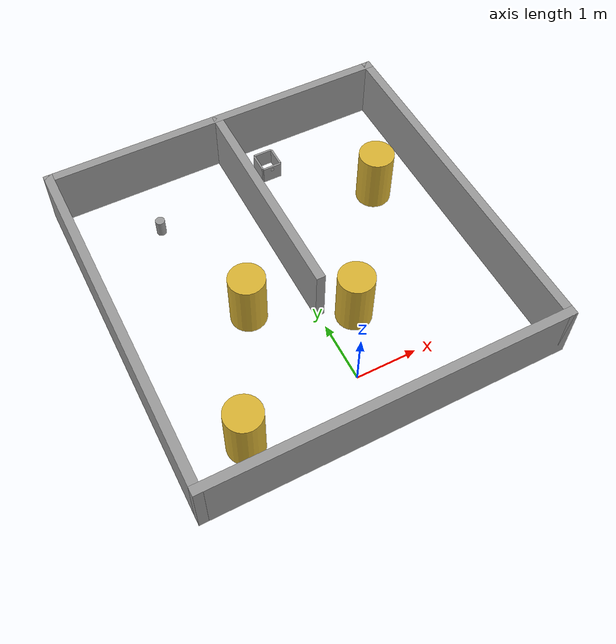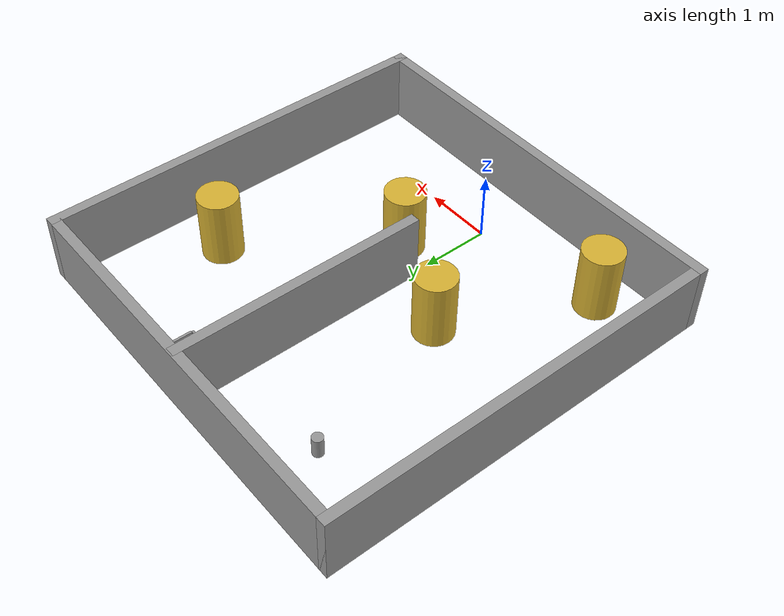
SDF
<?xml version='1.0'?>
<sdf version='1.6'>
  <model name='turtlebot3_rooms_mnp'>
    <link name='link_0'>
      <pose frame=''>0.683315 4.23233 0 0 -0 0</pose>
      <inertial>
        <mass>0.00350583</mass>
        <inertia>
          <ixx>2.82745e-05</ixx>
          <ixy>0</ixy>
          <ixz>0</ixz>
          <iyy>5.98732e-05</iyy>
          <iyz>0</iyz>
          <izz>3.22857e-05</izz>
        </inertia>
        <pose frame=''>0 0 0 0 -0 0</pose>
      </inertial>
      <visual name='visual'>
        <pose frame=''>0 0 0 0 -0 0</pose>
        <geometry>
          <box>
            <size>0.330665 0.034321 0.309211</size>
          </box>
        </geometry>
        <material>
          <lighting>1</lighting>
          <script>
            <uri>file://media/materials/scripts/gazebo.material</uri>
            <name>Gazebo/Grey</name>
          </script>
          <ambient>0.3 0.3 0.3 1</ambient>
          <diffuse>0.7 0.7 0.7 1</diffuse>
          <specular>0.01 0.01 0.01 1</specular>
          <emissive>0 0 0 1</emissive>
        </material>
        <cast_shadows>1</cast_shadows>
        <transparency>0</transparency>
      </visual>
      <collision name='collision'>
        <laser_retro>0</laser_retro>
        <max_contacts>10</max_contacts>
        <pose frame=''>0 0 0 0 -0 0</pose>
        <geometry>
          <box>
            <size>0.330665 0.034321 0.309211</size>
          </box>
        </geometry>
        <surface>
          <friction>
            <ode>
              <mu>1</mu>
              <mu2>1</mu2>
              <fdir1>0 0 0</fdir1>
              <slip1>0</slip1>
              <slip2>0</slip2>
            </ode>
            <torsional>
              <coefficient>1</coefficient>
              <patch_radius>0</patch_radius>
              <surface_radius>0</surface_radius>
              <use_patch_radius>1</use_patch_radius>
              <ode>
                <slip>0</slip>
              </ode>
            </torsional>
          </friction>
          <bounce>
            <restitution_coefficient>0</restitution_coefficient>
            <threshold>1e+06</threshold>
          </bounce>
          <contact>
            <collide_without_contact>0</collide_without_contact>
            <collide_without_contact_bitmask>1</collide_without_contact_bitmask>
            <collide_bitmask>1</collide_bitmask>
            <ode>
              <soft_cfm>0</soft_cfm>
              <soft_erp>0.2</soft_erp>
              <kp>1e+13</kp>
              <kd>1</kd>
              <max_vel>0.01</max_vel>
              <min_depth>0</min_depth>
            </ode>
            <bullet>
              <split_impulse>1</split_impulse>
              <split_impulse_penetration_threshold>-0.01</split_impulse_penetration_threshold>
              <soft_cfm>0</soft_cfm>
              <soft_erp>0.2</soft_erp>
              <kp>1e+13</kp>
              <kd>1</kd>
            </bullet>
          </contact>
        </surface>
      </collision>
    </link>
    <link name='link_0_clone'>
      <pose frame=''>0.682862 4.5976 0 0 -0 0</pose>
      <inertial>
        <mass>0.00350583</mass>
        <inertia>
          <ixx>2.82745e-05</ixx>
          <ixy>0</ixy>
          <ixz>0</ixz>
          <iyy>5.98732e-05</iyy>
          <iyz>0</iyz>
          <izz>3.22857e-05</izz>
        </inertia>
        <pose frame=''>0 0 0 0 -0 0</pose>
      </inertial>
      <visual name='visual'>
        <pose frame=''>0 0 0 0 -0 0</pose>
        <geometry>
          <box>
            <size>0.330665 0.034321 0.309211</size>
          </box>
        </geometry>
        <material>
          <lighting>1</lighting>
          <script>
            <uri>file://media/materials/scripts/gazebo.material</uri>
            <name>Gazebo/Grey</name>
          </script>
          <ambient>0.3 0.3 0.3 1</ambient>
          <diffuse>0.7 0.7 0.7 1</diffuse>
          <specular>0.01 0.01 0.01 1</specular>
          <emissive>0 0 0 1</emissive>
          <shader type='pixel'/>
        </material>
        <cast_shadows>1</cast_shadows>
        <transparency>0</transparency>
      </visual>
      <collision name='collision'>
        <laser_retro>0</laser_retro>
        <max_contacts>10</max_contacts>
        <pose frame=''>0 0 0 0 -0 0</pose>
        <geometry>
          <box>
            <size>0.330665 0.034321 0.309211</size>
          </box>
        </geometry>
        <surface>
          <friction>
            <ode>
              <mu>1</mu>
              <mu2>1</mu2>
              <fdir1>0 0 0</fdir1>
              <slip1>0</slip1>
              <slip2>0</slip2>
            </ode>
            <torsional>
              <coefficient>1</coefficient>
              <patch_radius>0</patch_radius>
              <surface_radius>0</surface_radius>
              <use_patch_radius>1</use_patch_radius>
              <ode>
                <slip>0</slip>
              </ode>
            </torsional>
          </friction>
          <bounce>
            <restitution_coefficient>0</restitution_coefficient>
            <threshold>1e+06</threshold>
          </bounce>
          <contact>
            <collide_without_contact>0</collide_without_contact>
            <collide_without_contact_bitmask>1</collide_without_contact_bitmask>
            <collide_bitmask>1</collide_bitmask>
            <ode>
              <soft_cfm>0</soft_cfm>
              <soft_erp>0.2</soft_erp>
              <kp>1e+13</kp>
              <kd>1</kd>
              <max_vel>0.01</max_vel>
              <min_depth>0</min_depth>
            </ode>
            <bullet>
              <split_impulse>1</split_impulse>
              <split_impulse_penetration_threshold>-0.01</split_impulse_penetration_threshold>
              <soft_cfm>0</soft_cfm>
              <soft_erp>0.2</soft_erp>
              <kp>1e+13</kp>
              <kd>1</kd>
            </bullet>
          </contact>
        </surface>
      </collision>
    </link>
    <link name='link_0_clone_0'>
      <pose frame=''>0.84811 4.41524 0 0 -0 1.5708</pose>
      <inertial>
        <mass>0.00350583</mass>
        <inertia>
          <ixx>2.82745e-05</ixx>
          <ixy>0</ixy>
          <ixz>0</ixz>
          <iyy>5.98732e-05</iyy>
          <iyz>0</iyz>
          <izz>3.22857e-05</izz>
        </inertia>
        <pose frame=''>0 0 0 0 -0 0</pose>
      </inertial>
      <visual name='visual'>
        <pose frame=''>0 0 0 0 -0 0</pose>
        <geometry>
          <box>
            <size>0.330665 0.034321 0.309211</size>
          </box>
        </geometry>
        <material>
          <lighting>1</lighting>
          <script>
            <uri>file://media/materials/scripts/gazebo.material</uri>
            <name>Gazebo/Grey</name>
          </script>
          <ambient>0.3 0.3 0.3 1</ambient>
          <diffuse>0.7 0.7 0.7 1</diffuse>
          <specular>0.01 0.01 0.01 1</specular>
          <emissive>0 0 0 1</emissive>
          <shader type='pixel'/>
        </material>
        <cast_shadows>1</cast_shadows>
        <transparency>0</transparency>
      </visual>
      <collision name='collision'>
        <laser_retro>0</laser_retro>
        <max_contacts>10</max_contacts>
        <pose frame=''>0 0 0 0 -0 0</pose>
        <geometry>
          <box>
            <size>0.330665 0.034321 0.309211</size>
          </box>
        </geometry>
        <surface>
          <friction>
            <ode>
              <mu>1</mu>
              <mu2>1</mu2>
              <fdir1>0 0 0</fdir1>
              <slip1>0</slip1>
              <slip2>0</slip2>
            </ode>
            <torsional>
              <coefficient>1</coefficient>
              <patch_radius>0</patch_radius>
              <surface_radius>0</surface_radius>
              <use_patch_radius>1</use_patch_radius>
              <ode>
                <slip>0</slip>
              </ode>
            </torsional>
          </friction>
          <bounce>
            <restitution_coefficient>0</restitution_coefficient>
            <threshold>1e+06</threshold>
          </bounce>
          <contact>
            <collide_without_contact>0</collide_without_contact>
            <collide_without_contact_bitmask>1</collide_without_contact_bitmask>
            <collide_bitmask>1</collide_bitmask>
            <ode>
              <soft_cfm>0</soft_cfm>
              <soft_erp>0.2</soft_erp>
              <kp>1e+13</kp>
              <kd>1</kd>
              <max_vel>0.01</max_vel>
              <min_depth>0</min_depth>
            </ode>
            <bullet>
              <split_impulse>1</split_impulse>
              <split_impulse_penetration_threshold>-0.01</split_impulse_penetration_threshold>
              <soft_cfm>0</soft_cfm>
              <soft_erp>0.2</soft_erp>
              <kp>1e+13</kp>
              <kd>1</kd>
            </bullet>
          </contact>
        </surface>
      </collision>
    </link>
    <link name='link_0_clone_1'>
      <pose frame=''>0.513944 4.41515 0 0 0 -1.5708</pose>
      <inertial>
        <mass>0.00350583</mass>
        <inertia>
          <ixx>2.82745e-05</ixx>
          <ixy>0</ixy>
          <ixz>0</ixz>
          <iyy>5.98732e-05</iyy>
          <iyz>0</iyz>
          <izz>3.22857e-05</izz>
        </inertia>
        <pose frame=''>0 0 0 0 -0 0</pose>
      </inertial>
      <visual name='visual'>
        <pose frame=''>0 0 0 0 -0 0</pose>
        <geometry>
          <box>
            <size>0.330665 0.034321 0.309211</size>
          </box>
        </geometry>
        <material>
          <lighting>1</lighting>
          <script>
            <uri>file://media/materials/scripts/gazebo.material</uri>
            <name>Gazebo/Grey</name>
          </script>
          <ambient>0.3 0.3 0.3 1</ambient>
          <diffuse>0.7 0.7 0.7 1</diffuse>
          <specular>0.01 0.01 0.01 1</specular>
          <emissive>0 0 0 1</emissive>
          <shader type='pixel'/>
        </material>
        <cast_shadows>1</cast_shadows>
        <transparency>0</transparency>
      </visual>
      <collision name='collision'>
        <laser_retro>0</laser_retro>
        <max_contacts>10</max_contacts>
        <pose frame=''>0 0 0 0 -0 0</pose>
        <geometry>
          <box>
            <size>0.330665 0.034321 0.309211</size>
          </box>
        </geometry>
        <surface>
          <friction>
            <ode>
              <mu>1</mu>
              <mu2>1</mu2>
              <fdir1>0 0 0</fdir1>
              <slip1>0</slip1>
              <slip2>0</slip2>
            </ode>
            <torsional>
              <coefficient>1</coefficient>
              <patch_radius>0</patch_radius>
              <surface_radius>0</surface_radius>
              <use_patch_radius>1</use_patch_radius>
              <ode>
                <slip>0</slip>
              </ode>
            </torsional>
          </friction>
          <bounce>
            <restitution_coefficient>0</restitution_coefficient>
            <threshold>1e+06</threshold>
          </bounce>
          <contact>
            <collide_without_contact>0</collide_without_contact>
            <collide_without_contact_bitmask>1</collide_without_contact_bitmask>
            <collide_bitmask>1</collide_bitmask>
            <ode>
              <soft_cfm>0</soft_cfm>
              <soft_erp>0.2</soft_erp>
              <kp>1e+13</kp>
              <kd>1</kd>
              <max_vel>0.01</max_vel>
              <min_depth>0</min_depth>
            </ode>
            <bullet>
              <split_impulse>1</split_impulse>
              <split_impulse_penetration_threshold>-0.01</split_impulse_penetration_threshold>
              <soft_cfm>0</soft_cfm>
              <soft_erp>0.2</soft_erp>
              <kp>1e+13</kp>
              <kd>1</kd>
            </bullet>
          </contact>
        </surface>
      </collision>
    </link>
      <link name='link_5'>
        <pose frame=''>-1.50431 3.99994 0 0 -0 0</pose>
        <inertial>
          <mass>0.00123934</mass>
          <inertia>
            <ixx>2.13894e-06</ixx>
            <ixy>0</ixy>
            <ixz>0</ixz>
            <iyy>2.13894e-06</iyy>
            <iyz>0</iyz>
            <izz>3.73085e-06</izz>
          </inertia>
          <pose frame=''>0 0 0 0 -0 0</pose>
        </inertial>
        <visual name='visual'>
          <pose frame=''>0 0 0 0 -0 0</pose>
          <geometry>
            <cylinder>
              <radius>0.08</radius>
              <length>0.3</length>
            </cylinder>
          </geometry>
          <material>
            <lighting>1</lighting>
            <script>
              <uri>file://media/materials/scripts/gazebo.material</uri>
              <name>Gazebo/Grey</name>
            </script>
            <ambient>0.3 0.3 0.3 1</ambient>
            <diffuse>0.7 0.7 0.7 1</diffuse>
            <specular>0.01 0.01 0.01 1</specular>
            <emissive>0 0 0 1</emissive>
          </material>
          <cast_shadows>1</cast_shadows>
          <transparency>0</transparency>
        </visual>
        <collision name='collision'>
          <laser_retro>0</laser_retro>
          <max_contacts>10</max_contacts>
          <pose frame=''>0 0 0 0 -0 0</pose>
          <geometry>
            <cylinder>
              <radius>0.08</radius>
              <length>0.3</length>
            </cylinder>
          </geometry>
          <surface>
            <friction>
              <ode>
                <mu>1</mu>
                <mu2>1</mu2>
                <fdir1>0 0 0</fdir1>
                <slip1>0</slip1>
                <slip2>0</slip2>
              </ode>
              <torsional>
                <coefficient>1</coefficient>
                <patch_radius>0</patch_radius>
                <surface_radius>0</surface_radius>
                <use_patch_radius>1</use_patch_radius>
                <ode>
                  <slip>0</slip>
                </ode>
              </torsional>
            </friction>
            <bounce>
              <restitution_coefficient>0</restitution_coefficient>
              <threshold>1e+06</threshold>
            </bounce>
            <contact>
              <collide_without_contact>0</collide_without_contact>
              <collide_without_contact_bitmask>1</collide_without_contact_bitmask>
              <collide_bitmask>1</collide_bitmask>
              <ode>
                <soft_cfm>0</soft_cfm>
                <soft_erp>0.2</soft_erp>
                <kp>1e+13</kp>
                <kd>1</kd>
                <max_vel>0.01</max_vel>
                <min_depth>0</min_depth>
              </ode>
              <bullet>
                <split_impulse>1</split_impulse>
                <split_impulse_penetration_threshold>-0.01</split_impulse_penetration_threshold>
                <soft_cfm>0</soft_cfm>
                <soft_erp>0.2</soft_erp>
                <kp>1e+13</kp>
                <kd>1</kd>
              </bullet>
            </contact>
          </surface>
        </collision>
      </link>
      <link name='link_1'>
        <pose frame=''>-0.960899 1.71925 0.5 0 -0 0</pose>
        <inertial>
          <mass>0.341779</mass>
          <inertia>
            <ixx>0.0357823</ixx>
            <ixy>0</ixy>
            <ixz>0</ixz>
            <iyy>0.0357823</iyy>
            <iyz>0</iyz>
            <izz>0.0146016</izz>
          </inertia>
          <pose frame=''>0 0 0 0 -0 0</pose>
        </inertial>
        <visual name='visual'>
          <pose frame=''>0 0 0 0 -0 0</pose>
          <geometry>
            <cylinder>
              <radius>0.292309</radius>
              <length>1</length>
            </cylinder>
          </geometry>
          <material>
            <lighting>1</lighting>
            <script>
              <uri>file://media/materials/scripts/gazebo.material</uri>
              <name>Gazebo/Gold</name>
            </script>
            <ambient>0.3 0.3 0.3 1</ambient>
            <diffuse>0.7 0.7 0.7 1</diffuse>
            <specular>0.01 0.01 0.01 1</specular>
            <emissive>0 0 0 1</emissive>
          </material>
          <cast_shadows>1</cast_shadows>
          <transparency>0</transparency>
        </visual>
        <collision name='collision'>
          <laser_retro>0</laser_retro>
          <max_contacts>10</max_contacts>
          <pose frame=''>0 0 0 0 -0 0</pose>
          <geometry>
            <cylinder>
              <radius>0.292309</radius>
              <length>1</length>
            </cylinder>
          </geometry>
          <surface>
            <friction>
              <ode>
                <mu>1</mu>
                <mu2>1</mu2>
                <fdir1>0 0 0</fdir1>
                <slip1>0</slip1>
                <slip2>0</slip2>
              </ode>
              <torsional>
                <coefficient>1</coefficient>
                <patch_radius>0</patch_radius>
                <surface_radius>0</surface_radius>
                <use_patch_radius>1</use_patch_radius>
                <ode>
                  <slip>0</slip>
                </ode>
              </torsional>
            </friction>
            <bounce>
              <restitution_coefficient>0</restitution_coefficient>
              <threshold>1e+06</threshold>
            </bounce>
            <contact>
              <collide_without_contact>0</collide_without_contact>
              <collide_without_contact_bitmask>1</collide_without_contact_bitmask>
              <collide_bitmask>1</collide_bitmask>
              <ode>
                <soft_cfm>0</soft_cfm>
                <soft_erp>0.2</soft_erp>
                <kp>1e+13</kp>
                <kd>1</kd>
                <max_vel>0.01</max_vel>
                <min_depth>0</min_depth>
              </ode>
              <bullet>
                <split_impulse>1</split_impulse>
                <split_impulse_penetration_threshold>-0.01</split_impulse_penetration_threshold>
                <soft_cfm>0</soft_cfm>
                <soft_erp>0.2</soft_erp>
                <kp>1e+13</kp>
                <kd>1</kd>
              </bullet>
            </contact>
          </surface>
        </collision>
      </link>
      <link name='link_1_clone'>
        <pose frame=''>-1.9402 -0.24147 0.5 0 -0 0</pose>
        <inertial>
          <mass>0.341779</mass>
          <inertia>
            <ixx>0.0357823</ixx>
            <ixy>0</ixy>
            <ixz>0</ixz>
            <iyy>0.0357823</iyy>
            <iyz>0</iyz>
            <izz>0.0146016</izz>
          </inertia>
          <pose frame=''>0 0 0 0 -0 0</pose>
        </inertial>
        <visual name='visual'>
          <pose frame=''>0 0 0 0 -0 0</pose>
          <geometry>
            <cylinder>
              <radius>0.292309</radius>
              <length>1</length>
            </cylinder>
          </geometry>
          <material>
            <lighting>1</lighting>
            <script>
              <uri>file://media/materials/scripts/gazebo.material</uri>
              <name>Gazebo/Gold</name>
            </script>
            <ambient>0.3 0.3 0.3 1</ambient>
            <diffuse>0.7 0.7 0.7 1</diffuse>
            <specular>0.01 0.01 0.01 1</specular>
            <emissive>0 0 0 1</emissive>
            <shader type='pixel'/>
          </material>
          <cast_shadows>1</cast_shadows>
          <transparency>0</transparency>
        </visual>
        <collision name='collision'>
          <laser_retro>0</laser_retro>
          <max_contacts>10</max_contacts>
          <pose frame=''>0 0 0 0 -0 0</pose>
          <geometry>
            <cylinder>
              <radius>0.292309</radius>
              <length>1</length>
            </cylinder>
          </geometry>
          <surface>
            <friction>
              <ode>
                <mu>1</mu>
                <mu2>1</mu2>
                <fdir1>0 0 0</fdir1>
                <slip1>0</slip1>
                <slip2>0</slip2>
              </ode>
              <torsional>
                <coefficient>1</coefficient>
                <patch_radius>0</patch_radius>
                <surface_radius>0</surface_radius>
                <use_patch_radius>1</use_patch_radius>
                <ode>
                  <slip>0</slip>
                </ode>
              </torsional>
            </friction>
            <bounce>
              <restitution_coefficient>0</restitution_coefficient>
              <threshold>1e+06</threshold>
            </bounce>
            <contact>
              <collide_without_contact>0</collide_without_contact>
              <collide_without_contact_bitmask>1</collide_without_contact_bitmask>
              <collide_bitmask>1</collide_bitmask>
              <ode>
                <soft_cfm>0</soft_cfm>
                <soft_erp>0.2</soft_erp>
                <kp>1e+13</kp>
                <kd>1</kd>
                <max_vel>0.01</max_vel>
                <min_depth>0</min_depth>
              </ode>
              <bullet>
                <split_impulse>1</split_impulse>
                <split_impulse_penetration_threshold>-0.01</split_impulse_penetration_threshold>
                <soft_cfm>0</soft_cfm>
                <soft_erp>0.2</soft_erp>
                <kp>1e+13</kp>
                <kd>1</kd>
              </bullet>
            </contact>
          </surface>
        </collision>
      </link>
      <link name='link_1_clone_0'>
        <pose frame=''>0.49715 0.99994 0.5 0 -0 0</pose>
        <inertial>
          <mass>0.341779</mass>
          <inertia>
            <ixx>0.0357823</ixx>
            <ixy>0</ixy>
            <ixz>0</ixz>
            <iyy>0.0357823</iyy>
            <iyz>0</iyz>
            <izz>0.0146016</izz>
          </inertia>
          <pose frame=''>0 0 0 0 -0 0</pose>
        </inertial>
        <visual name='visual'>
          <pose frame=''>0 0 0 0 -0 0</pose>
          <geometry>
            <cylinder>
              <radius>0.292309</radius>
              <length>1</length>
            </cylinder>
          </geometry>
          <material>
            <lighting>1</lighting>
            <script>
              <uri>file://media/materials/scripts/gazebo.material</uri>
              <name>Gazebo/Gold</name>
            </script>
            <ambient>0.3 0.3 0.3 1</ambient>
            <diffuse>0.7 0.7 0.7 1</diffuse>
            <specular>0.01 0.01 0.01 1</specular>
            <emissive>0 0 0 1</emissive>
            <shader type='pixel'/>
          </material>
          <cast_shadows>1</cast_shadows>
          <transparency>0</transparency>
        </visual>
        <collision name='collision'>
          <laser_retro>0</laser_retro>
          <max_contacts>10</max_contacts>
          <pose frame=''>0 0 0 0 -0 0</pose>
          <geometry>
            <cylinder>
              <radius>0.292309</radius>
              <length>1</length>
            </cylinder>
          </geometry>
          <surface>
            <friction>
              <ode>
                <mu>1</mu>
                <mu2>1</mu2>
                <fdir1>0 0 0</fdir1>
                <slip1>0</slip1>
                <slip2>0</slip2>
              </ode>
              <torsional>
                <coefficient>1</coefficient>
                <patch_radius>0</patch_radius>
                <surface_radius>0</surface_radius>
                <use_patch_radius>1</use_patch_radius>
                <ode>
                  <slip>0</slip>
                </ode>
              </torsional>
            </friction>
            <bounce>
              <restitution_coefficient>0</restitution_coefficient>
              <threshold>1e+06</threshold>
            </bounce>
            <contact>
              <collide_without_contact>0</collide_without_contact>
              <collide_without_contact_bitmask>1</collide_without_contact_bitmask>
              <collide_bitmask>1</collide_bitmask>
              <ode>
                <soft_cfm>0</soft_cfm>
                <soft_erp>0.2</soft_erp>
                <kp>1e+13</kp>
                <kd>1</kd>
                <max_vel>0.01</max_vel>
                <min_depth>0</min_depth>
              </ode>
              <bullet>
                <split_impulse>1</split_impulse>
                <split_impulse_penetration_threshold>-0.01</split_impulse_penetration_threshold>
                <soft_cfm>0</soft_cfm>
                <soft_erp>0.2</soft_erp>
                <kp>1e+13</kp>
                <kd>1</kd>
              </bullet>
            </contact>
          </surface>
        </collision>
      </link>
      <link name='link_1_clone_1'>
        <pose frame=''>2 2.99994 0.5 0 -0 0</pose>
        <inertial>
          <mass>0.341779</mass>
          <inertia>
            <ixx>0.0357823</ixx>
            <ixy>0</ixy>
            <ixz>0</ixz>
            <iyy>0.0357823</iyy>
            <iyz>0</iyz>
            <izz>0.0146016</izz>
          </inertia>
          <pose frame=''>0 0 0 0 -0 0</pose>
        </inertial>
        <visual name='visual'>
          <pose frame=''>0 0 0 0 -0 0</pose>
          <geometry>
            <cylinder>
              <radius>0.292309</radius>
              <length>1</length>
            </cylinder>
          </geometry>
          <material>
            <lighting>1</lighting>
            <script>
              <uri>file://media/materials/scripts/gazebo.material</uri>
              <name>Gazebo/Gold</name>
            </script>
            <ambient>0.3 0.3 0.3 1</ambient>
            <diffuse>0.7 0.7 0.7 1</diffuse>
            <specular>0.01 0.01 0.01 1</specular>
            <emissive>0 0 0 1</emissive>
            <shader type='pixel'/>
          </material>
          <cast_shadows>1</cast_shadows>
          <transparency>0</transparency>
        </visual>
        <collision name='collision'>
          <laser_retro>0</laser_retro>
          <max_contacts>10</max_contacts>
          <pose frame=''>0 0 0 0 -0 0</pose>
          <geometry>
            <cylinder>
              <radius>0.292309</radius>
              <length>1</length>
            </cylinder>
          </geometry>
          <surface>
            <friction>
              <ode>
                <mu>1</mu>
                <mu2>1</mu2>
                <fdir1>0 0 0</fdir1>
                <slip1>0</slip1>
                <slip2>0</slip2>
              </ode>
              <torsional>
                <coefficient>1</coefficient>
                <patch_radius>0</patch_radius>
                <surface_radius>0</surface_radius>
                <use_patch_radius>1</use_patch_radius>
                <ode>
                  <slip>0</slip>
                </ode>
              </torsional>
            </friction>
            <bounce>
              <restitution_coefficient>0</restitution_coefficient>
              <threshold>1e+06</threshold>
            </bounce>
            <contact>
              <collide_without_contact>0</collide_without_contact>
              <collide_without_contact_bitmask>1</collide_without_contact_bitmask>
              <collide_bitmask>1</collide_bitmask>
              <ode>
                <soft_cfm>0</soft_cfm>
                <soft_erp>0.2</soft_erp>
                <kp>1e+13</kp>
                <kd>1</kd>
                <max_vel>0.01</max_vel>
                <min_depth>0</min_depth>
              </ode>
              <bullet>
                <split_impulse>1</split_impulse>
                <split_impulse_penetration_threshold>-0.01</split_impulse_penetration_threshold>
                <soft_cfm>0</soft_cfm>
                <soft_erp>0.2</soft_erp>
                <kp>1e+13</kp>
                <kd>1</kd>
              </bullet>
            </contact>
          </surface>
        </collision>
      </link>
      <model name='ar_marker_clone'>
        <static>1</static>
        <link name='link'>
          <visual name='visual'>
            <geometry>
              <box>
                <size>0.05 0.001 0.05</size>
              </box>
            </geometry>
            <material>
              <script>
                  <uri>model://turtlebot3_rooms/ar_marker/materials/scripts</uri>
                  <uri>model://turtlebot3_rooms/ar_marker/materials/textures</uri>
                  <name>ar_marker</name>
              </script>
            </material>
          </visual>
        </link>
        <pose frame=''>0.68 4.21 0.096 0 0 0</pose>
      </model>
      <model name='rooms'>
        <pose frame=''>0 1.99994 0 0 -0 0</pose>
        <link name='Wall_14'>
          <collision name='Wall_14_Collision'>
            <geometry>
              <box>
                <size>6 0.15 1</size>
              </box>
            </geometry>
            <pose frame=''>0 0 0.5 0 -0 0</pose>
          </collision>
          <visual name='Wall_14_Visual'>
            <pose frame=''>0 0 0.5 0 -0 0</pose>
            <geometry>
              <box>
                <size>6 0.15 1</size>
              </box>
            </geometry>
            <material>
              <script>
                <uri>file://media/materials/scripts/gazebo.material</uri>
                <name>Gazebo/Grey</name>
              </script>
              <ambient>1 1 1 1</ambient>
            </material>
          </visual>
          <pose frame=''>0 -2.925 0 0 -0 0</pose>
        </link>
        <link name='Wall_16'>
          <collision name='Wall_16_Collision'>
            <geometry>
              <box>
                <size>6 0.15 1</size>
              </box>
            </geometry>
            <pose frame=''>0 0 0.5 0 -0 0</pose>
          </collision>
          <visual name='Wall_16_Visual'>
            <pose frame=''>0 0 0.5 0 -0 0</pose>
            <geometry>
              <box>
                <size>6 0.15 1</size>
              </box>
            </geometry>
            <material>
              <script>
                <uri>file://media/materials/scripts/gazebo.material</uri>
                <name>Gazebo/Grey</name>
              </script>
              <ambient>1 1 1 1</ambient>
            </material>
          </visual>
          <pose frame=''>-2.925 0 0 0 -0 1.5708</pose>
        </link>
        <link name='Wall_18'>
          <collision name='Wall_18_Collision'>
            <geometry>
              <box>
                <size>6 0.15 1</size>
              </box>
            </geometry>
            <pose frame=''>0 0 0.5 0 -0 0</pose>
          </collision>
          <visual name='Wall_18_Visual'>
            <pose frame=''>0 0 0.5 0 -0 0</pose>
            <geometry>
              <box>
                <size>6 0.15 1</size>
              </box>
            </geometry>
            <material>
              <script>
                <uri>file://media/materials/scripts/gazebo.material</uri>
                <name>Gazebo/Grey</name>
              </script>
              <ambient>1 1 1 1</ambient>
            </material>
          </visual>
          <pose frame=''>2.925 0 0 0 -0 1.5708</pose>
        </link>
        <link name='Wall_20'>
          <collision name='Wall_20_Collision'>
            <geometry>
              <box>
                <size>6 0.15 1</size>
              </box>
            </geometry>
            <pose frame=''>0 0 0.5 0 -0 0</pose>
          </collision>
          <visual name='Wall_20_Visual'>
            <pose frame=''>0 0 0.5 0 -0 0</pose>
            <geometry>
              <box>
                <size>6 0.15 1</size>
              </box>
            </geometry>
            <material>
              <script>
                <uri>file://media/materials/scripts/gazebo.material</uri>
                <name>Gazebo/Grey</name>
              </script>
              <ambient>1 1 1 1</ambient>
            </material>
          </visual>
          <pose frame=''>0 2.925 0 0 -0 0</pose>
        </link>
        <link name='Wall_22'>
          <collision name='Wall_22_Collision'>
            <geometry>
              <box>
                <size>3.75 0.15 1</size>
              </box>
            </geometry>
            <pose frame=''>0 0 0.5 0 -0 0</pose>
          </collision>
          <visual name='Wall_22_Visual'>
            <pose frame=''>0 0 0.5 0 -0 0</pose>
            <geometry>
              <box>
                <size>3.75 0.15 1</size>
              </box>
            </geometry>
            <material>
              <script>
                <uri>file://media/materials/scripts/gazebo.material</uri>
                <name>Gazebo/Grey</name>
              </script>
              <ambient>1 1 1 1</ambient>
            </material>
          </visual>
          <pose frame=''>0.022 1.101 0 0 0 -1.5708</pose>
        </link>
        <link name='Wall_22'>
          <collision name='Wall_22_Collision'>
            <geometry>
              <box>
                <size>3.75 0.15 1</size>
              </box>
            </geometry>
            <pose frame=''>0 0 0.5 0 -0 0</pose>
          </collision>
          <visual name='Wall_22_Visual'>
            <pose frame=''>0 0 0.5 0 -0 0</pose>
            <geometry>
              <box>
                <size>3.75 0.15 1</size>
              </box>
            </geometry>
            <material>
              <script>
                <uri>file://media/materials/scripts/gazebo.material</uri>
                <name>Gazebo/Grey</name>
              </script>
              <ambient>1 1 1 1</ambient>
            </material>
          </visual>
          <pose frame=''>0.022 1.101 0 0 0 -1.5708</pose>
        </link>
        <static>1</static>
      </model>
      <static>1</static>
      <allow_auto_disable>0</allow_auto_disable>
      <pose frame=''>-0 1e-06 0 0 -0 0</pose>
  </model>
</sdf>
